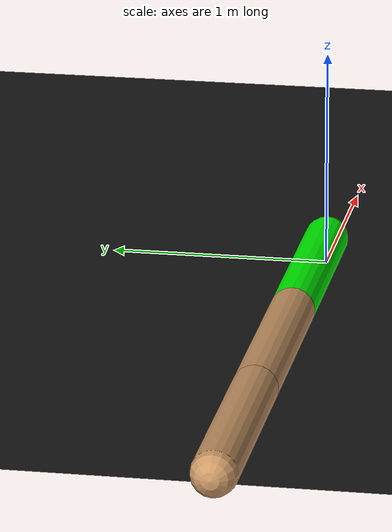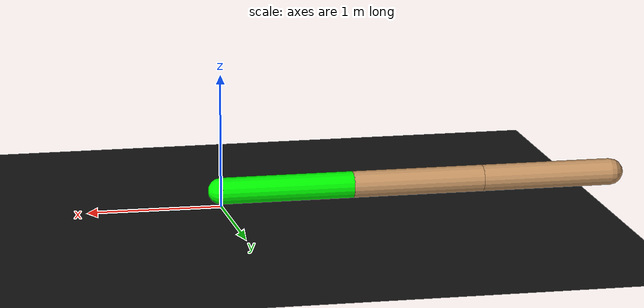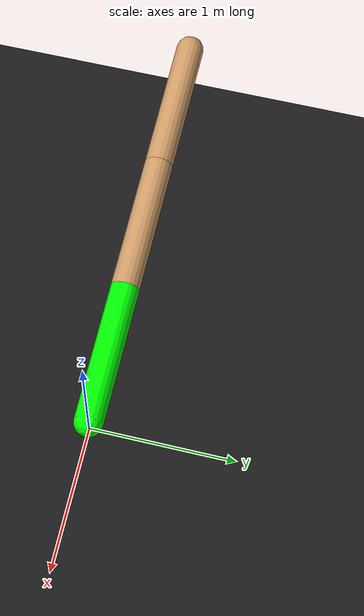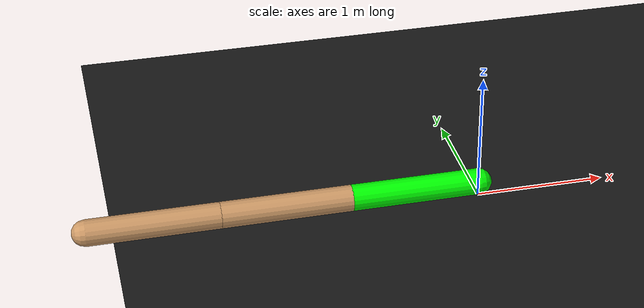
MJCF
<mujoco model="swimmer">
  <compiler angle="degree" coordinate="local" inertiafromgeom="true" meshdir="mesh" texturedir="textures"/>
<option gravity="0 0 -9.81" integrator="Euler" iterations="20" timestep=".01" />
  <default>
    <!-- controls rope and color  -->
      <joint armature="0.04" damping="1"/>
      <geom conaffinity="1" condim="3" contype="1" density="10" friction=".8 .1 .1" margin="0.002" rgba="0.8 0.6 .4 1" />
  </default>

  <worldbody>
    <light cutoff="100" diffuse="1 1 1" dir="-0 0 -1" directional="true" exponent="1" pos="0 0 0.0" specular=".1 .1 .1"/>

    <geom rgba="0.1 0.1 .1 1." conaffinity="1" density='0.' contype="1" condim="1" name="table" pos="0 0.0 0." size="2.8 2.8 0.1" type="plane" />
    <!--  ================= SWIMMER ================= /-->
    <body name="torso" pos="0 0 .12" >
      <geom density="30" name="pointbody" type="sphere" size="0.01" pos="0 0 0"  />
      <joint name='ballx' type='slide' axis='1 0 0' pos='0 0 0.1' />
      <joint name='bally' type='slide' axis='0 1 0' pos='0 0 0.1' />
      <joint name='rot' type='hinge' axis='0 0 1' pos='0 0 0' limited="false" />
      <body name="torso2" pos="0 0 0">
          <geom density="30" fromto="0 0 0 -1 0 0" size="0.1" type="capsule" rgba="0 1 0 1" />
          <joint axis="0 0 1" name="rot2" pos="0 0 0" type="hinge"/>
          <body name="mid" pos="-1 0 0">
            <geom density="30" fromto="0 0 0 -1 0 0" size="0.1" type="capsule"/>
            <joint axis="0 0 1" limited="false" name="rot3" pos="0 0 0" type="hinge"/>

            <body name="back2" pos="-1 0 0">
              <geom density="30" fromto="0 0 0 -1 0 0" size="0.1" type="capsule"/>
              <joint axis="0 0 1" name="rot5" pos="0 0 0" type="hinge"/>

          </body>
        </body>
      </body>
    </body>

  </worldbody>

  <actuator>
    <motor ctrllimited="false" ctrlrange="-1 1" gear="200.0" joint="ballx"/>
    <motor ctrllimited="false" ctrlrange="-1 1" gear="200.0" joint="bally"/>
  </actuator>
</mujoco>
